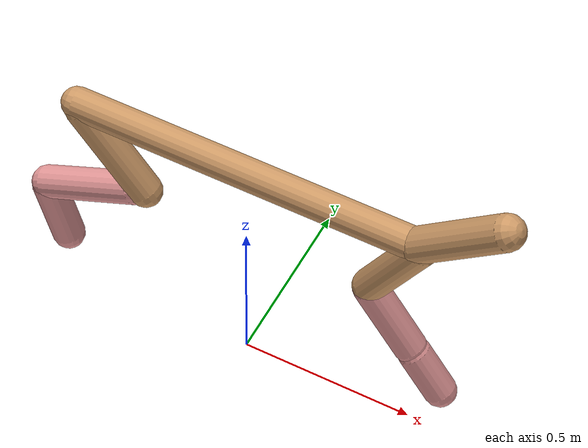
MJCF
<mujoco model="cheetah">
  <compiler angle="radian" coordinate="local" inertiafromgeom="true" settotalmass="14" />
  <default>
    <joint armature=".1" damping=".01" limited="true" solimplimit="0 .8 .03" solreflimit=".02 1" stiffness="8" />
    <geom conaffinity="0" condim="3" contype="1" friction="0.8 .1 .1" rgba="0.8 0.6 .4 1" solimp="0.0 0.8 0.01" solref="0.02 1" />
    <motor ctrllimited="true" ctrlrange="-1 1" />
  </default>
  <size nstack="300000" nuser_geom="1" />
  <option gravity="0 0 -9.81" timestep="0.01" />
  <worldbody>
    <body name="torso" pos="0.0 0.0 0.7690555160133475">
      <joint armature="0" axis="1 0 0" damping="0" limited="false" name="ignorex" pos="0 0 0" stiffness="0" type="slide" />
      <joint armature="0" axis="0 0 1" damping="0" limited="false" name="ignorez" pos="0 0 0" stiffness="0" type="slide" />
      <joint armature="0" axis="0 1 0" damping="0" limited="false" name="ignorey" pos="0 0 0" stiffness="0" type="hinge" />
      <geom fromto="-0.5 0.0 0.0 0.5094729285256301 0.0 0.0" name="torso" size="0.04428619448466235" type="capsule" />
      <geom axisangle="0 1 0 .87" name="head" pos="0.6094729285256301 0.0 0.1" size="0.04932447944506825 0.15" type="capsule" />

      <body name="bthigh" pos="-.5 0 0">
        <joint axis="0 1 0" damping="6" name="bthigh" pos="0 0 0" range="-.52 1.05" stiffness="240" type="hinge" />
        <geom axisangle="0 1 0 -3.8" name="bthigh" pos="0.10369119260376794 0.0 -0.1347985503848983" size="0.046872461822549186 0.15105400599888358" type="capsule" />
        <body name="bshin" pos="0.16738238520753587 0.0 -0.2595971007697966">
          <joint axis="0 1 0" damping="4.5" name="bshin" pos="0 0 0" range="-.785 .785" stiffness="180" type="hinge" />
          <geom axisangle="0 1 0 -2.03" name="bshin" pos="-0.14560158715159804 0.0 -0.07280079357579902" rgba="0.9 0.6 0.6 1" size="0.046872461822549186 0.1562627648264313" type="capsule" />
          <body name="bfoot" pos="-0.2912031743031961 0.0 -0.14560158715159804">
            <joint axis="0 1 0" damping="3" name="bfoot" pos="0 0 0" range="-.4 .785" stiffness="120" type="hinge" />
            <geom axisangle="0 1 0 -.27" name="bfoot" pos="0.031159619963141486 0.0 -0.10074943788082415" rgba="0.9 0.6 0.6 1" size="0.046872461822549186 0.09792466595789695" type="capsule" />
            <inertial mass="10" />
          </body>
        </body>
      </body>
      <body name="fthigh" pos="0.5094729285256301 0.0 0.0">
        <joint axis="0 1 0" damping="4.5" name="fthigh" pos="0 0 0" range="-1.5 0.8" stiffness="180" type="hinge" />
        <geom axisangle="0 1 0 .52" name="fthigh" pos="-0.07484073723675887 0.0 -0.12829840669158663" size="0.046229857776054956 0.14260709584704523" type="capsule" />
        <body name="fshin" pos="-0.14968147447351773 0.0 -0.25659681338317325">
          <joint axis="0 1 0" damping="3" name="fshin" pos="0 0 0" range="-1.2 1.1" stiffness="120" type="hinge" />
          <geom axisangle="0 1 0 -.6" name="fshin" pos="0.06948297421084337 0.0 -0.09620719506116773" rgba="0.9 0.6 0.6 1" size="0.046229857776054956 0.11365678315629167" type="capsule" />
          <body name="ffoot" pos="0.13896594842168675 0.0 -0.19241439012233547">
            <joint axis="0 1 0" damping="1.5" name="ffoot" pos="0 0 0" range="-3.1 -0.3" stiffness="60" type="hinge" />
            <geom axisangle="0 1 0 -.6" name="ffoot" pos="0.047734268426192675 0.0 -0.07425330644074417" rgba="0.9 0.6 0.6 1" size="0.046229857776054956 0.07505636623528696" type="capsule" />
            <inertial mass="10" />
          </body>
        </body>
      </body>
    </body>
  </worldbody>
  <actuator>
    <motor gear="120" joint="bthigh" name="bthigh" />
    <motor gear="90" joint="bshin" name="bshin" />
    <motor gear="60" joint="bfoot" name="bfoot" />
    <motor gear="120" joint="fthigh" name="fthigh" />
    <motor gear="60" joint="fshin" name="fshin" />
    <motor gear="30" joint="ffoot" name="ffoot" />
  </actuator>
</mujoco>
